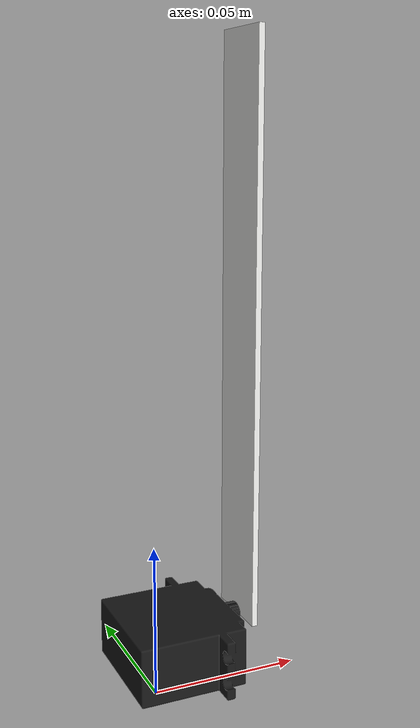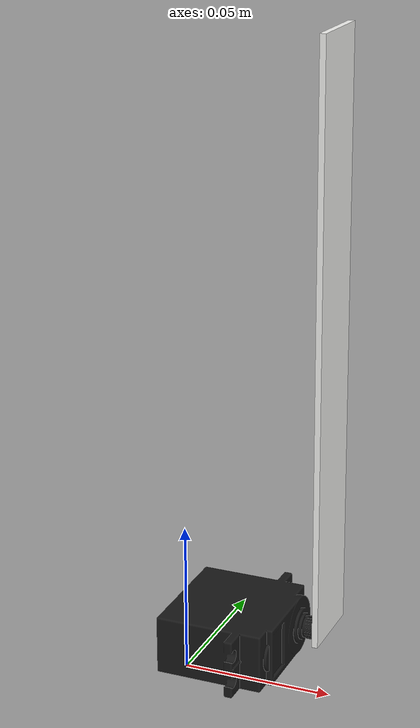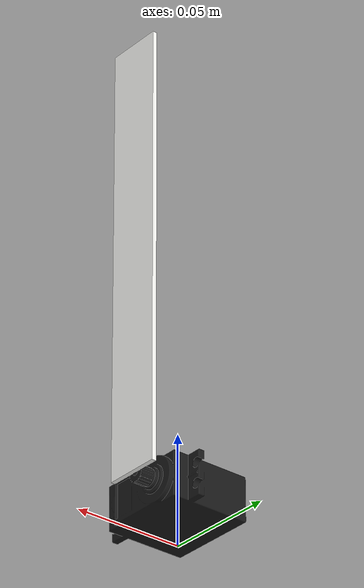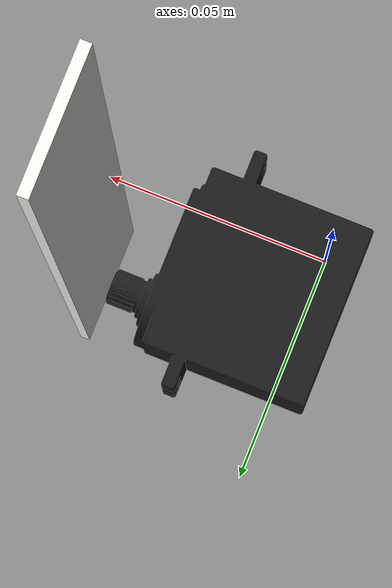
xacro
<?xml version="1.0" ?>
<robot name="one_dof" xmlns:xacro="http://www.ros.org/wiki/xacro">

<xacro:include filename="$(find one_dof_description)/urdf/materials.xacro" />
<xacro:include filename="$(find one_dof_description)/urdf/one_dof.trans" />
<xacro:include filename="$(find one_dof_description)/urdf/one_dof.gazebo" />
<link name="base_link">
  <inertial>
    <origin xyz="0.012102313902654016 0.01290292105437145 0.009999999316170799" rpy="0 0 0"/>
    <mass value="0.24909707230016578"/>
    <inertia ixx="4.3e-05" iyy="4e-05" izz="6.7e-05" ixy="-1e-06" iyz="-0.0" ixz="0.0"/>
  </inertial>
  <visual>
    <origin xyz="0 0 0" rpy="0 0 0"/>
    <geometry>
      <mesh filename="package://one_dof_description/meshes/base_link.stl" scale="0.001 0.001 0.001"/>
    </geometry>
    <material name="opaque252525"/>
  </visual>
  <collision>
    <origin xyz="0 0 0" rpy="0 0 0"/>
    <geometry>
      <mesh filename="package://one_dof_description/meshes/base_link.stl" scale="0.001 0.001 0.001"/>
    </geometry>
  </collision>
</link>

<link name="link_1">
  <inertial>
    <origin xyz="0.0009997920934277649 -2.0094058074404675e-07 0.1" rpy="0 0 0"/>
    <mass value="0.0106"/>
    <inertia ixx="3.6e-05" iyy="3.5e-05" izz="1e-06" ixy="0.0" iyz="0.0" ixz="-0.0"/>
  </inertial>
  <visual>
    <origin xyz="-0.040149 -0.022797 -0.01" rpy="0 0 0"/>
    <geometry>
      <mesh filename="package://one_dof_description/meshes/link_1.stl" scale="0.001 0.001 0.001"/>
    </geometry>
    <material name="abs_white"/>
  </visual>
  <collision>
    <origin xyz="-0.040149 -0.022797 -0.01" rpy="0 0 0"/>
    <geometry>
      <mesh filename="package://one_dof_description/meshes/link_1.stl" scale="0.001 0.001 0.001"/>
    </geometry>
  </collision>
</link>

<joint name="joint" type="continuous">
  <origin xyz="0.040149 0.022797 0.01" rpy="0 0 0"/>
  <parent link="base_link"/>
  <child link="link_1"/>
  <axis xyz="1.0 0.0 -0.0"/>
</joint>

</robot>

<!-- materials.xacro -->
<robot name="one_dof" xmlns:xacro="http://www.ros.org/wiki/xacro" >

<material name="silver_default">
  <color rgba="0.700 0.700 0.700 1.000"/>
</material>
<material name="opaque252525">
  <color rgba="0.09803921568627451 0.09803921568627451 0.09803921568627451 1.0"/>
</material>
<material name="abs_white">
  <color rgba="0.9647058823529412 0.9647058823529412 0.9529411764705882 1.0"/>
</material>

</robot>

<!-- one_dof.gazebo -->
<robot name="one_dof" xmlns:xacro="http://www.ros.org/wiki/xacro" >

<xacro:property name="body_color" value="Gazebo/Silver" />

<gazebo>
  <plugin name="control" filename="libgazebo_ros_control.so"/>
</gazebo>
<gazebo reference="base_link">
  <material>${body_color}</material>
  <mu1>1000</mu1>
  <mu2>1000</mu2>
  <selfCollide>true</selfCollide>
  <gravity>true</gravity>
</gazebo>

<gazebo reference="link_1">
  <material>${body_color}</material>
  <mu1>0.2</mu1>
  <mu2>0.2</mu2>
  <selfCollide>true</selfCollide>
</gazebo>

</robot>
